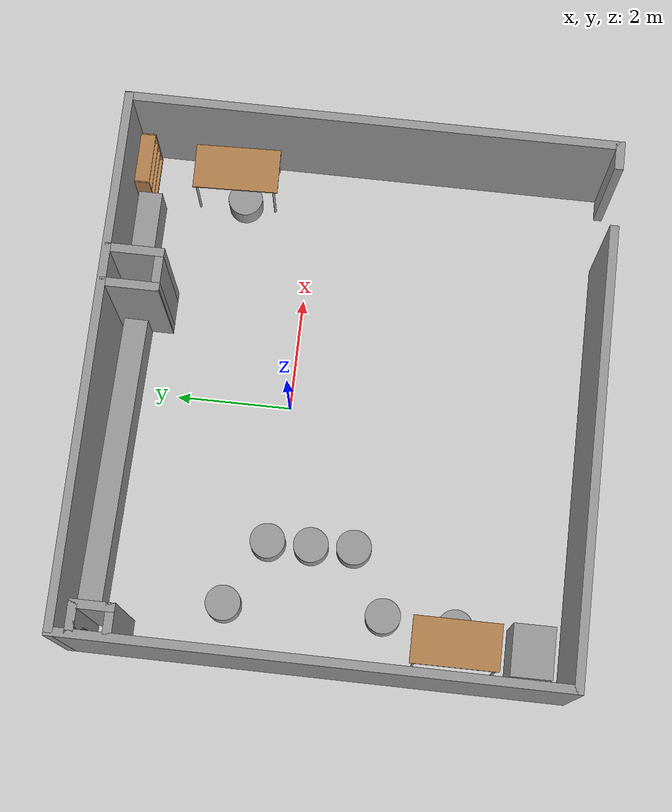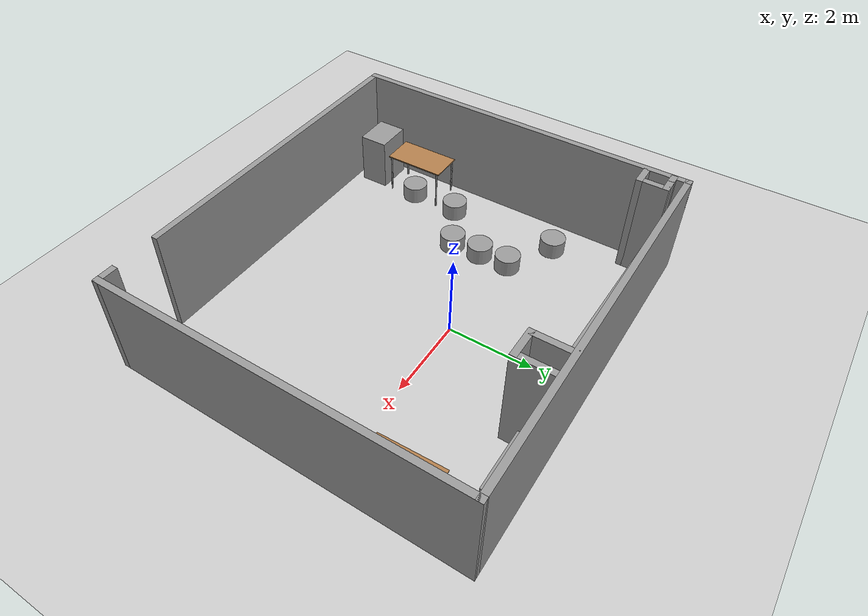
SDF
<sdf version="1.6">
 <world name="default">
  <light name="sun" type="directional">
   <pose>0 0 10 0 -0 0</pose>
   <diffuse>0.8 0.8 0.8 1</diffuse>
   <specular>0.2 0.2 0.2 1</specular>
   <attenuation>
    <range>1000</range>
    <constant>0.9</constant>
    <linear>0.01</linear>
    <quadratic>0.001</quadratic>
   </attenuation>
   <direction>-0.5 0.1 -0.9</direction>
  </light>
  <model name="ground_plane">
   <static>1</static>
   <link name="link">
    <collision name="collision">
     <geometry><plane><normal>0 0 1</normal><size>100 100</size></plane></geometry>
     <surface>
      <contact><collide_bitmask>65535</collide_bitmask></contact>
      <friction><ode><mu>100</mu><mu2>50</mu2></ode></friction>
     </surface>
    </collision>
    <visual name="visual">
     <cast_shadows>0</cast_shadows>
     <geometry><plane><normal>0 0 1</normal><size>100 100</size></plane></geometry>
     <material>
      <script><uri>file://media/materials/scripts/gazebo.material</uri><name>Gazebo/Grey</name></script>
     </material>
    </visual>
   </link>
  </model>
  <gravity>0 0 -9.8</gravity>
  <magnetic_field>6e-06 2.3e-05 -4.2e-05</magnetic_field>
  <atmosphere type="adiabatic"/>
  <physics name="default_physics" default="0" type="ode">
   <max_step_size>0.001</max_step_size>
   <real_time_factor>1</real_time_factor>
   <real_time_update_rate>1000</real_time_update_rate>
  </physics>
  <scene><ambient>0.4 0.4 0.4 1</ambient><background>0.7 0.7 0.7 1</background><shadows>1</shadows></scene>
  <audio><device>default</device></audio>
  <spherical_coordinates>
   <surface_model>EARTH_WGS84</surface_model>
   <latitude_deg>0</latitude_deg>
   <longitude_deg>0</longitude_deg>
   <elevation>0</elevation>
   <heading_deg>0</heading_deg>
  </spherical_coordinates>
  <model name="sk_building_floor_plan">
   <pose>0.002007 -0.9574 0 0 -0 0</pose>
   <link name="Wall_0">
    <collision name="Wall_0_Collision">
     <geometry><box><size>9.25 0.15 2.5</size></box></geometry>
     <pose>0 0 1.25 0 -0 0</pose>
    </collision>
    <visual name="Wall_0_Visual">
     <pose>0 0 1.25 0 -0 0</pose>
     <geometry><box><size>9.25 0.15 2.5</size></box></geometry>
     <material>
      <script><uri>file://media/materials/scripts/gazebo.material</uri><name>Gazebo/Grey</name></script>
      <ambient>1 1 1 1</ambient>
     </material>
     <meta><layer>0</layer></meta>
    </visual>
    <pose>0 4.175 0 0 -0 0</pose>
   </link>
   <link name="Wall_1">
    <collision name="Wall_1_Collision">
     <geometry><box><size>8.5 0.15 2.5</size></box></geometry>
     <pose>0 0 1.25 0 -0 0</pose>
    </collision>
    <visual name="Wall_1_Visual">
     <pose>0 0 1.25 0 -0 0</pose>
     <geometry><box><size>8.5 0.15 2.5</size></box></geometry>
     <material>
      <script><uri>file://media/materials/scripts/gazebo.material</uri><name>Gazebo/Grey</name></script>
      <ambient>1 1 1 1</ambient>
     </material>
     <meta><layer>0</layer></meta>
    </visual>
    <pose>4.55 0 0 0 -0 -1.5708</pose>
   </link>
   <link name="Wall_12">
    <collision name="Wall_12_Collision">
     <geometry><box><size>1 0.15 2.5</size></box></geometry>
     <pose>0 0 1.25 0 -0 0</pose>
    </collision>
    <visual name="Wall_12_Visual">
     <pose>0 0 1.25 0 -0 0</pose>
     <geometry><box><size>1 0.15 2.5</size></box></geometry>
     <material>
      <script><uri>file://media/materials/scripts/gazebo.material</uri><name>Gazebo/Grey</name></script>
      <ambient>1 1 1 1</ambient>
     </material>
     <meta><layer>0</layer></meta>
    </visual>
    <pose>1.23265 3.70374 0 0 -0 -1.5708</pose>
   </link>
   <link name="Wall_13">
    <collision name="Wall_13_Collision">
     <geometry><box><size>0.75 0.15 2.5</size></box></geometry>
     <pose>0 0 1.25 0 -0 0</pose>
    </collision>
    <visual name="Wall_13_Visual">
     <pose>0 0 1.25 0 -0 0</pose>
     <geometry><box><size>0.75 0.15 2.5</size></box></geometry>
     <material>
      <script><uri>file://media/materials/scripts/gazebo.material</uri><name>Gazebo/Grey</name></script>
      <ambient>1 1 1 1</ambient>
     </material>
     <meta><layer>0</layer></meta>
    </visual>
    <pose>1.53265 3.27874 0 0 -0 0</pose>
   </link>
   <link name="Wall_14">
    <collision name="Wall_14_Collision">
     <geometry><box><size>1 0.15 2.5</size></box></geometry>
     <pose>0 0 1.25 0 -0 0</pose>
    </collision>
    <visual name="Wall_14_Visual">
     <pose>0 0 1.25 0 -0 0</pose>
     <geometry><box><size>1 0.15 2.5</size></box></geometry>
     <material>
      <script><uri>file://media/materials/scripts/gazebo.material</uri><name>Gazebo/Grey</name></script>
      <ambient>1 1 1 1</ambient>
     </material>
     <meta><layer>0</layer></meta>
    </visual>
    <pose>1.83265 3.70374 0 0 -0 1.5708</pose>
   </link>
   <link name="Wall_16">
    <collision name="Wall_16_Collision">
     <geometry><box><size>0.25 0.15 2.5</size></box></geometry>
     <pose>0 0 1.25 0 -0 0</pose>
    </collision>
    <visual name="Wall_16_Visual">
     <pose>0 0 1.25 0 -0 0</pose>
     <geometry><box><size>0.25 0.15 2.5</size></box></geometry>
     <material>
      <script><uri>file://media/materials/scripts/gazebo.material</uri><name>Gazebo/Grey</name></script>
      <ambient>1 1 1 1</ambient>
     </material>
     <meta><layer>0</layer></meta>
    </visual>
    <pose>-4.47687 3.85117 0 0 -0 0</pose>
   </link>
   <link name="Wall_17">
    <collision name="Wall_17_Collision">
     <geometry><box><size>0.25 0.15 2.5</size></box></geometry>
     <pose>0 0 1.25 0 -0 0</pose>
    </collision>
    <visual name="Wall_17_Visual">
     <pose>0 0 1.25 0 -0 0</pose>
     <geometry><box><size>0.25 0.15 2.5</size></box></geometry>
     <material>
      <script><uri>file://media/materials/scripts/gazebo.material</uri><name>Gazebo/Grey</name></script>
      <ambient>1 1 1 1</ambient>
     </material>
     <meta><layer>0</layer></meta>
    </visual>
    <pose>-4.47687 3.85117 0 0 -0 3.14159</pose>
   </link>
   <link name="Wall_2">
    <collision name="Wall_2_Collision">
     <geometry><box><size>0.5 0.15 2.5</size></box></geometry>
     <pose>0 0 1.25 0 -0 0</pose>
    </collision>
    <visual name="Wall_2_Visual">
     <pose>0 0 1.25 0 -0 0</pose>
     <geometry><box><size>0.5 0.15 2.5</size></box></geometry>
     <material>
      <script><uri>file://media/materials/scripts/gazebo.material</uri><name>Gazebo/Grey</name></script>
      <ambient>1 1 1 1</ambient>
     </material>
     <meta><layer>0</layer></meta>
    </visual>
    <pose>4.375 -4.175 0 0 -0 3.14159</pose>
   </link>
   <link name="Wall_20">
    <collision name="Wall_20_Collision">
     <geometry><box><size>0.5 0.15 2.5</size></box></geometry>
     <pose>0 0 1.25 0 -0 0</pose>
    </collision>
    <visual name="Wall_20_Visual">
     <pose>0 0 1.25 0 -0 0</pose>
     <geometry><box><size>0.5 0.15 2.5</size></box></geometry>
     <material>
      <script><uri>file://media/materials/scripts/gazebo.material</uri><name>Gazebo/Grey</name></script>
      <ambient>1 1 1 1</ambient>
     </material>
     <meta><layer>0</layer></meta>
    </visual>
    <pose>-4.25187 3.85117 0 0 -0 0</pose>
   </link>
   <link name="Wall_21">
    <collision name="Wall_21_Collision">
     <geometry><box><size>0.75 0.15 2.5</size></box></geometry>
     <pose>0 0 1.25 0 -0 0</pose>
    </collision>
    <visual name="Wall_21_Visual">
     <pose>0 0 1.25 0 -0 0</pose>
     <geometry><box><size>0.75 0.15 2.5</size></box></geometry>
     <material>
      <script><uri>file://media/materials/scripts/gazebo.material</uri><name>Gazebo/Grey</name></script>
      <ambient>1 1 1 1</ambient>
     </material>
     <meta><layer>0</layer></meta>
    </visual>
    <pose>-4.07687 3.55117 0 0 -0 -1.5708</pose>
   </link>
   <link name="Wall_22">
    <collision name="Wall_22_Collision">
     <geometry><box><size>0.5 0.15 2.5</size></box></geometry>
     <pose>0 0 1.25 0 -0 0</pose>
    </collision>
    <visual name="Wall_22_Visual">
     <pose>0 0 1.25 0 -0 0</pose>
     <geometry><box><size>0.5 0.15 2.5</size></box></geometry>
     <material>
      <script><uri>file://media/materials/scripts/gazebo.material</uri><name>Gazebo/Grey</name></script>
      <ambient>1 1 1 1</ambient>
     </material>
     <meta><layer>0</layer></meta>
    </visual>
    <pose>-4.25187 3.25117 0 0 -0 3.14159</pose>
   </link>
   <link name="Wall_4">
    <collision name="Wall_4_Collision">
     <geometry><box><size>8.5 0.15 2.5</size></box></geometry>
     <pose>0 0 1.25 0 -0 0</pose>
    </collision>
    <visual name="Wall_4_Visual">
     <pose>0 0 1.25 0 -0 0</pose>
     <geometry><box><size>8.5 0.15 2.5</size></box></geometry>
     <material>
      <script><uri>file://media/materials/scripts/gazebo.material</uri><name>Gazebo/Grey</name></script>
      <ambient>1 1 1 1</ambient>
     </material>
     <meta><layer>0</layer></meta>
    </visual>
    <pose>-4.55 0 0 0 -0 -1.5708</pose>
   </link>
   <link name="Wall_5">
    <collision name="Wall_5_Collision">
     <geometry><box><size>7.75 0.15 2.5</size></box></geometry>
     <pose>0 0 1.25 0 -0 0</pose>
    </collision>
    <visual name="Wall_5_Visual">
     <pose>0 0 1.25 0 -0 0</pose>
     <geometry><box><size>7.75 0.15 2.5</size></box></geometry>
     <material>
      <script><uri>file://media/materials/scripts/gazebo.material</uri><name>Gazebo/Grey</name></script>
      <ambient>1 1 1 1</ambient>
     </material>
     <meta><layer>0</layer></meta>
    </visual>
    <pose>-0.75 -4.175 0 0 -0 0</pose>
   </link>
   <static>1</static>
  </model>
  <model name="bookshelf">
   <static>1</static>
   <link name="link">
    <inertial><mass>1</mass></inertial>
    <collision name="back">
     <pose>0 0.005 0.6 0 -0 0</pose>
     <geometry><box><size>0.9 0.01 1.2</size></box></geometry>
    </collision>
    <visual name="visual1">
     <pose>0 0.005 0.6 0 -0 0</pose>
     <geometry><box><size>0.9 0.01 1.2</size></box></geometry>
     <material>
      <script><uri>file://media/materials/scripts/gazebo.material</uri><name>Gazebo/Wood</name></script>
     </material>
    </visual>
    <collision name="left_side">
     <pose>0.45 -0.195 0.6 0 -0 0</pose>
     <geometry><box><size>0.02 0.4 1.2</size></box></geometry>
    </collision>
    <visual name="visual2">
     <pose>0.45 -0.195 0.6 0 -0 0</pose>
     <geometry><box><size>0.02 0.4 1.2</size></box></geometry>
     <material>
      <script><uri>file://media/materials/scripts/gazebo.material</uri><name>Gazebo/Wood</name></script>
     </material>
    </visual>
    <collision name="right_side">
     <pose>-0.45 -0.195 0.6 0 -0 0</pose>
     <geometry><box><size>0.02 0.4 1.2</size></box></geometry>
    </collision>
    <visual name="visual3">
     <pose>-0.45 -0.195 0.6 0 -0 0</pose>
     <geometry><box><size>0.02 0.4 1.2</size></box></geometry>
     <material>
      <script><uri>file://media/materials/scripts/gazebo.material</uri><name>Gazebo/Wood</name></script>
     </material>
    </visual>
    <collision name="bottom">
     <pose>0 -0.195 0.03 0 -0 0</pose>
     <geometry><box><size>0.88 0.4 0.06</size></box></geometry>
    </collision>
    <visual name="visual4">
     <pose>0 -0.195 0.03 0 -0 0</pose>
     <geometry><box><size>0.88 0.4 0.06</size></box></geometry>
     <material>
      <script><uri>file://media/materials/scripts/gazebo.material</uri><name>Gazebo/Wood</name></script>
     </material>
    </visual>
    <collision name="top">
     <pose>0 -0.195 1.19 0 -0 0</pose>
     <geometry><box><size>0.88 0.4 0.02</size></box></geometry>
    </collision>
    <visual name="visual5">
     <pose>0 -0.195 1.19 0 -0 0</pose>
     <geometry><box><size>0.88 0.4 0.02</size></box></geometry>
     <material>
      <script><uri>file://media/materials/scripts/gazebo.material</uri><name>Gazebo/Wood</name></script>
     </material>
    </visual>
    <collision name="low_shelf">
     <pose>0 -0.195 0.43 0 -0 0</pose>
     <geometry><box><size>0.88 0.4 0.02</size></box></geometry>
    </collision>
    <visual name="visual6">
     <pose>0 -0.195 0.43 0 -0 0</pose>
     <geometry><box><size>0.88 0.4 0.02</size></box></geometry>
     <material>
      <script><uri>file://media/materials/scripts/gazebo.material</uri><name>Gazebo/Wood</name></script>
     </material>
    </visual>
    <collision name="high_shelf">
     <pose>0 -0.195 0.8 0 -0 0</pose>
     <geometry><box><size>0.88 0.4 0.02</size></box></geometry>
    </collision>
    <visual name="visual7">
     <pose>0 -0.195 0.8 0 -0 0</pose>
     <geometry><box><size>0.88 0.4 0.02</size></box></geometry>
     <material>
      <script><uri>file://media/materials/scripts/gazebo.material</uri><name>Gazebo/Wood</name></script>
     </material>
    </visual>
   </link>
   <pose>3.9684 3.27568 0 0 -0 0</pose>
  </model>
  <model name="table">
   <static>1</static>
   <link name="link">
    <collision name="surface">
     <pose>0 0 1 0 -0 0</pose>
     <geometry><box><size>1.5 0.8 0.03</size></box></geometry>
     <surface><friction><ode><mu>0.6</mu><mu2>0.6</mu2></ode></friction></surface>
    </collision>
    <visual name="visual1">
     <pose>0 0 1 0 -0 0</pose>
     <geometry><box><size>1.5 0.8 0.03</size></box></geometry>
     <material>
      <script><uri>file://media/materials/scripts/gazebo.material</uri><name>Gazebo/Wood</name></script>
     </material>
    </visual>
    <collision name="front_left_leg">
     <pose>0.68 0.38 0.5 0 -0 0</pose>
     <geometry><cylinder><radius>0.02</radius><length>1</length></cylinder></geometry>
    </collision>
    <visual name="front_left_leg">
     <pose>0.68 0.38 0.5 0 -0 0</pose>
     <geometry><cylinder><radius>0.02</radius><length>1</length></cylinder></geometry>
     <material>
      <script><uri>file://media/materials/scripts/gazebo.material</uri><name>Gazebo/Grey</name></script>
     </material>
    </visual>
    <collision name="front_right_leg">
     <pose>0.68 -0.38 0.5 0 -0 0</pose>
     <geometry><cylinder><radius>0.02</radius><length>1</length></cylinder></geometry>
    </collision>
    <visual name="front_right_leg">
     <pose>0.68 -0.38 0.5 0 -0 0</pose>
     <geometry><cylinder><radius>0.02</radius><length>1</length></cylinder></geometry>
     <material>
      <script><uri>file://media/materials/scripts/gazebo.material</uri><name>Gazebo/Grey</name></script>
     </material>
    </visual>
    <collision name="back_right_leg">
     <pose>-0.68 -0.38 0.5 0 -0 0</pose>
     <geometry><cylinder><radius>0.02</radius><length>1</length></cylinder></geometry>
    </collision>
    <visual name="back_right_leg">
     <pose>-0.68 -0.38 0.5 0 -0 0</pose>
     <geometry><cylinder><radius>0.02</radius><length>1</length></cylinder></geometry>
     <material>
      <script><uri>file://media/materials/scripts/gazebo.material</uri><name>Gazebo/Grey</name></script>
     </material>
    </visual>
    <collision name="back_left_leg">
     <pose>-0.68 0.38 0.5 0 -0 0</pose>
     <geometry><cylinder><radius>0.02</radius><length>1</length></cylinder></geometry>
    </collision>
    <visual name="back_left_leg">
     <pose>-0.68 0.38 0.5 0 -0 0</pose>
     <geometry><cylinder><radius>0.02</radius><length>1</length></cylinder></geometry>
     <material>
      <script><uri>file://media/materials/scripts/gazebo.material</uri><name>Gazebo/Grey</name></script>
     </material>
    </visual>
   </link>
   <pose>4.01854 1.39956 0 0 -0 1.60025</pose>
  </model>
  <model name="unit_box">
   <pose>-1.42127 2.87581 0.365222 1.9e-05 -0.001056 3.12337</pose>
   <link name="link">
    <inertial>
     <mass>1</mass>
     <inertia>
      <ixx>0.166667</ixx>
      <ixy>0</ixy>
      <ixz>0</ixz>
      <iyy>0.166667</iyy>
      <iyz>0</iyz>
      <izz>0.166667</izz>
     </inertia>
    </inertial>
    <collision name="collision"><geometry><box><size>5.13499 0.416672 0.73585</size></box></geometry></collision>
    <visual name="visual">
     <geometry><box><size>5.13499 0.416672 0.73585</size></box></geometry>
     <material>
      <script><name>Gazebo/Grey</name><uri>file://media/materials/scripts/gazebo.material</uri></script>
     </material>
    </visual>
   </link>
  </model>
  <model name="unit_box_0">
   <pose>2.78407 2.89178 0.390501 -2e-06 1e-06 -5.3e-05</pose>
   <link name="link">
    <inertial>
     <mass>1</mass>
     <inertia>
      <ixx>0.166667</ixx>
      <ixy>0</ixy>
      <ixz>0</ixz>
      <iyy>0.166667</iyy>
      <iyz>0</iyz>
      <izz>0.166667</izz>
     </inertia>
    </inertial>
    <collision name="collision"><geometry><box><size>1.41377 0.416365 0.781004</size></box></geometry></collision>
    <visual name="visual">
     <geometry><box><size>1.41377 0.416365 0.781004</size></box></geometry>
     <material>
      <script><name>Gazebo/Grey</name><uri>file://media/materials/scripts/gazebo.material</uri></script>
     </material>
    </visual>
   </link>
  </model>
  <model name="table_0">
   <static>1</static>
   <link name="link">
    <collision name="surface">
     <pose>0 0 1 0 -0 0</pose>
     <geometry><box><size>1.5 0.8 0.03</size></box></geometry>
     <surface><friction><ode><mu>0.6</mu><mu2>0.6</mu2></ode></friction></surface>
    </collision>
    <visual name="visual1">
     <pose>0 0 1 0 -0 0</pose>
     <geometry><box><size>1.5 0.8 0.03</size></box></geometry>
     <material>
      <script><uri>file://media/materials/scripts/gazebo.material</uri><name>Gazebo/Wood</name></script>
     </material>
    </visual>
    <collision name="front_left_leg">
     <pose>0.68 0.38 0.5 0 -0 0</pose>
     <geometry><cylinder><radius>0.02</radius><length>1</length></cylinder></geometry>
    </collision>
    <visual name="front_left_leg">
     <pose>0.68 0.38 0.5 0 -0 0</pose>
     <geometry><cylinder><radius>0.02</radius><length>1</length></cylinder></geometry>
     <material>
      <script><uri>file://media/materials/scripts/gazebo.material</uri><name>Gazebo/Grey</name></script>
     </material>
    </visual>
    <collision name="front_right_leg">
     <pose>0.68 -0.38 0.5 0 -0 0</pose>
     <geometry><cylinder><radius>0.02</radius><length>1</length></cylinder></geometry>
    </collision>
    <visual name="front_right_leg">
     <pose>0.68 -0.38 0.5 0 -0 0</pose>
     <geometry><cylinder><radius>0.02</radius><length>1</length></cylinder></geometry>
     <material>
      <script><uri>file://media/materials/scripts/gazebo.material</uri><name>Gazebo/Grey</name></script>
     </material>
    </visual>
    <collision name="back_right_leg">
     <pose>-0.68 -0.38 0.5 0 -0 0</pose>
     <geometry><cylinder><radius>0.02</radius><length>1</length></cylinder></geometry>
    </collision>
    <visual name="back_right_leg">
     <pose>-0.68 -0.38 0.5 0 -0 0</pose>
     <geometry><cylinder><radius>0.02</radius><length>1</length></cylinder></geometry>
     <material>
      <script><uri>file://media/materials/scripts/gazebo.material</uri><name>Gazebo/Grey</name></script>
     </material>
    </visual>
    <collision name="back_left_leg">
     <pose>-0.68 0.38 0.5 0 -0 0</pose>
     <geometry><cylinder><radius>0.02</radius><length>1</length></cylinder></geometry>
    </collision>
    <visual name="back_left_leg">
     <pose>-0.68 0.38 0.5 0 -0 0</pose>
     <geometry><cylinder><radius>0.02</radius><length>1</length></cylinder></geometry>
     <material>
      <script><uri>file://media/materials/scripts/gazebo.material</uri><name>Gazebo/Grey</name></script>
     </material>
    </visual>
   </link>
   <pose>-3.88422 -3.24896 0 0 -0 1.57481</pose>
  </model>
  <model name="unit_box_1">
   <pose>-3.91058 -4.49277 0.653106 3e-06 7e-06 0.004598</pose>
   <link name="link">
    <inertial>
     <mass>1</mass>
     <inertia>
      <ixx>0.166667</ixx>
      <ixy>0</ixy>
      <ixz>0</ixz>
      <iyy>0.166667</iyy>
      <iyz>0</iyz>
      <izz>0.166667</izz>
     </inertia>
    </inertial>
    <collision name="collision"><geometry><box><size>0.877618 0.704546 1.30622</size></box></geometry></collision>
    <visual name="visual">
     <geometry><box><size>0.877618 0.704546 1.30622</size></box></geometry>
     <material>
      <script><name>Gazebo/Grey</name><uri>file://media/materials/scripts/gazebo.material</uri></script>
     </material>
    </visual>
   </link>
  </model>
  <model name="unit_cylinder">
   <pose>-2.42488 -0.646036 0.207867 4e-06 -4e-06 -0.007161</pose>
   <link name="link">
    <inertial>
     <mass>1</mass>
     <inertia><ixx>0.145833</ixx><ixy>0</ixy><ixz>0</ixz><iyy>0.145833</iyy><iyz>0</iyz><izz>0.125</izz></inertia>
    </inertial>
    <collision name="collision">
     <geometry><cylinder><radius>0.303698</radius><length>0.415749</length></cylinder></geometry>
    </collision>
    <visual name="visual">
     <geometry><cylinder><radius>0.303698</radius><length>0.415749</length></cylinder></geometry>
     <material>
      <script><name>Gazebo/Grey</name><uri>file://media/materials/scripts/gazebo.material</uri></script>
     </material>
    </visual>
   </link>
  </model>
  <model name="unit_cylinder_clone">
   <pose>-3.57115 0.725893 0.207872 3e-06 3e-06 -0.007161</pose>
   <link name="link">
    <inertial>
     <mass>1</mass>
     <inertia><ixx>0.145833</ixx><ixy>0</ixy><ixz>0</ixz><iyy>0.145833</iyy><iyz>0</iyz><izz>0.125</izz></inertia>
    </inertial>
    <collision name="collision">
     <geometry><cylinder><radius>0.303698</radius><length>0.41575</length></cylinder></geometry>
    </collision>
    <visual name="visual">
     <geometry><cylinder><radius>0.303698</radius><length>0.41575</length></cylinder></geometry>
     <material>
      <script><name>Gazebo/Grey</name><uri>file://media/materials/scripts/gazebo.material</uri></script>
     </material>
    </visual>
   </link>
  </model>
  <model name="unit_cylinder_clone_1">
   <pose>-3.50034 -1.99867 0.207868 3e-06 -3e-06 -0.007298</pose>
   <link name="link">
    <inertial>
     <mass>1</mass>
     <inertia><ixx>0.145833</ixx><ixy>0</ixy><ixz>0</ixz><iyy>0.145833</iyy><iyz>0</iyz><izz>0.125</izz></inertia>
    </inertial>
    <collision name="collision">
     <geometry><cylinder><radius>0.303698</radius><length>0.41575</length></cylinder></geometry>
    </collision>
    <visual name="visual">
     <geometry><cylinder><radius>0.303698</radius><length>0.41575</length></cylinder></geometry>
     <material>
      <script><name>Gazebo/Grey</name><uri>file://media/materials/scripts/gazebo.material</uri></script>
     </material>
    </visual>
   </link>
  </model>
  <model name="unit_cylinder_clone_2">
   <pose>-2.43395 0.10076 0.207875 0 0 -0.007161</pose>
   <link name="link">
    <inertial>
     <mass>1</mass>
     <inertia><ixx>0.145833</ixx><ixy>0</ixy><ixz>0</ixz><iyy>0.145833</iyy><iyz>0</iyz><izz>0.125</izz></inertia>
    </inertial>
    <collision name="collision">
     <geometry><cylinder><radius>0.303698</radius><length>0.41575</length></cylinder></geometry>
    </collision>
    <visual name="visual">
     <geometry><cylinder><radius>0.303698</radius><length>0.41575</length></cylinder></geometry>
     <material>
      <script><name>Gazebo/Grey</name><uri>file://media/materials/scripts/gazebo.material</uri></script>
     </material>
    </visual>
   </link>
  </model>
  <model name="unit_cylinder_clone_3">
   <pose>-2.38856 -1.38532 0.207874 1e-06 -2e-06 -0.007161</pose>
   <link name="link">
    <inertial>
     <mass>1</mass>
     <inertia><ixx>0.145833</ixx><ixy>0</ixy><ixz>0</ixz><iyy>0.145833</iyy><iyz>0</iyz><izz>0.125</izz></inertia>
    </inertial>
    <collision name="collision">
     <geometry><cylinder><radius>0.303698</radius><length>0.41575</length></cylinder></geometry>
    </collision>
    <visual name="visual">
     <geometry><cylinder><radius>0.303698</radius><length>0.41575</length></cylinder></geometry>
     <material>
      <script><name>Gazebo/Grey</name><uri>file://media/materials/scripts/gazebo.material</uri></script>
     </material>
    </visual>
   </link>
  </model>
  <model name="unit_cylinder_clone_4">
   <pose>-3.55844 -3.23468 0.207872 -3e-06 3e-06 -0.007161</pose>
   <link name="link">
    <inertial>
     <mass>1</mass>
     <inertia><ixx>0.145833</ixx><ixy>0</ixy><ixz>0</ixz><iyy>0.145833</iyy><iyz>0</iyz><izz>0.125</izz></inertia>
    </inertial>
    <collision name="collision">
     <geometry><cylinder><radius>0.303698</radius><length>0.41575</length></cylinder></geometry>
    </collision>
    <visual name="visual">
     <geometry><cylinder><radius>0.303698</radius><length>0.41575</length></cylinder></geometry>
     <material>
      <script><name>Gazebo/Grey</name><uri>file://media/materials/scripts/gazebo.material</uri></script>
     </material>
    </visual>
   </link>
  </model>
  <model name="unit_cylinder_clone_5">
   <pose>3.68552 1.23815 0.207872 -3e-06 3e-06 -0.007161</pose>
   <link name="link">
    <inertial>
     <mass>1</mass>
     <inertia><ixx>0.145833</ixx><ixy>0</ixy><ixz>0</ixz><iyy>0.145833</iyy><iyz>0</iyz><izz>0.125</izz></inertia>
    </inertial>
    <collision name="collision">
     <geometry><cylinder><radius>0.303698</radius><length>0.41575</length></cylinder></geometry>
    </collision>
    <visual name="visual">
     <geometry><cylinder><radius>0.303698</radius><length>0.41575</length></cylinder></geometry>
     <material>
      <script><name>Gazebo/Grey</name><uri>file://media/materials/scripts/gazebo.material</uri></script>
     </material>
    </visual>
   </link>
  </model>
 </world>
</sdf>
